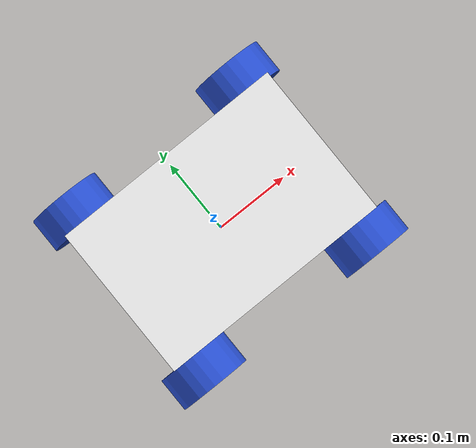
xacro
<?xml version="1.0"?>
<robot xmlns:xacro="http://www.ros.org/wiki/xacro">

    <xacro:include filename="robot_colors.xacro"/>
    <xacro:include filename="inertial_macros.xacro" />

    <!-- BASE LINK -->

    <link name="base_link">

    </link>

    <!-- CHASSIS LINK -->

    <joint name="chassis_joint" type="fixed">
        <parent link="base_link"/>
        <child link="chassis"/>
        <origin xyz="0 0 0.05"/>
    </joint>

    <link name="chassis">
        <visual>
            <origin xyz="0 0 0.075" rpy="0 0 0"/>
            <geometry>
                <box size="0.3048 0.2032 0.15"/>
            </geometry>
            <material name="white"/>
        </visual>
        <collision>
            <origin xyz="0 0 0.075" rpy="0 0 0"/>
            <geometry>
                <box size="0.3048 0.2032 0.15"/>
            </geometry>
        </collision>
        <xacro:inertial_box mass="0.5" x="0.3048" y="0.2032" z="0.15">
            <origin xyz="0 0 0.075" rpy="0 0 0"/>
        </xacro:inertial_box>
    </link>

    <!-- LEFT FRONT WHEEL -->

    <joint name="left_front_wheel_joint" type="continuous">
        <parent link="base_link"/>
        <child link="left_front_wheel"/>
        <origin xyz="0.127 0.1241 0.075" rpy="-${pi/2} 0 0"/>
        <axis xyz="0 0 1"/>
    </joint>

    <link name="left_front_wheel">
        <visual>
            <geometry>
                <cylinder length="0.045" radius="0.048" />
            </geometry>
            <material name="blue"/>
        </visual>
        <collision>
            <geometry>
                <cylinder length="0.045" radius="0.048" />
            </geometry>
        </collision>
        <xacro:inertial_cylinder mass="0.1" length="0.045" radius="0.048">
            <origin xyz="0.127 0.1241 0.075" rpy="-${pi/2} 0 0"/>
        </xacro:inertial_cylinder>
    </link>

    <!-- LEFT BACK WHEEL -->

    <joint name="left_back_wheel_joint" type="continuous">
        <parent link="base_link"/>
        <child link="left_back_wheel"/>
        <origin xyz="-0.127 0.1241 0.075" rpy="-${pi/2} 0 0"/>
        <axis xyz="0 0 1"/>
    </joint>

    <link name="left_back_wheel">
        <visual>
            <geometry>
                 <cylinder length="0.045" radius="0.048" />
            </geometry>
            <material name="blue"/>
        </visual>
        <collision>
            <geometry>
                 <cylinder length="0.045" radius="0.048" />
            </geometry>
        </collision>
        <xacro:inertial_cylinder mass="0.1" length="0.045" radius="0.048">
            <origin xyz="-0.127 0.1241 0.075" rpy="-${pi/2} 0 0"/>
        </xacro:inertial_cylinder>
    </link>

    <!-- RIGHT FRONT WHEEL -->

    <joint name="right_front_wheel_joint" type="continuous">
        <parent link="base_link"/>
        <child link="right_front_wheel"/>
        <origin xyz="0.127 -0.1241 0.075" rpy="${pi/2} 0 0"/>
        <axis xyz="0 0 -1"/>
    </joint>

    <link name="right_front_wheel">
        <visual>
            <geometry>
                <cylinder length="0.045" radius="0.048" />
            </geometry>
            <material name="blue"/>
        </visual>
        <collision>
            <geometry>
                <cylinder length="0.045" radius="0.048" />
            </geometry>
        </collision>
        <xacro:inertial_cylinder mass="0.1" length="0.045" radius="0.048">
            <origin xyz="0.127 -0.1241 0.075" rpy="${pi/2} 0 0"/>
        </xacro:inertial_cylinder>
    </link>

    <!-- RIGHT BACK WHEEL -->

    <joint name="right_back_wheel_joint" type="continuous">
        <parent link="base_link"/>
        <child link="right_back_wheel"/>
        <origin xyz="-0.127 -0.1241 0.075" rpy="${pi/2} 0 0"/>
        <axis xyz="0 0 -1"/>
    </joint>

    <link name="right_back_wheel">
        <visual>
            <geometry>
                <cylinder length="0.045" radius="0.048" />
            </geometry>
            <material name="blue"/>
        </visual>
        <collision>
            <geometry>
                <cylinder length="0.045" radius="0.048" />
            </geometry>
        </collision>
        <xacro:inertial_cylinder mass="0.1" length="0.045" radius="0.048">
            <origin xyz="-0.127 -0.1241 0.075" rpy="${pi/2} 0 0"/>
        </xacro:inertial_cylinder>
    </link>

</robot>
